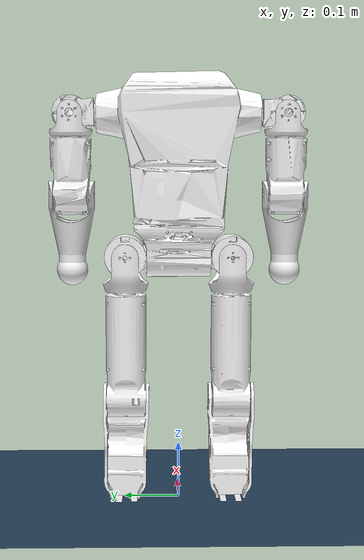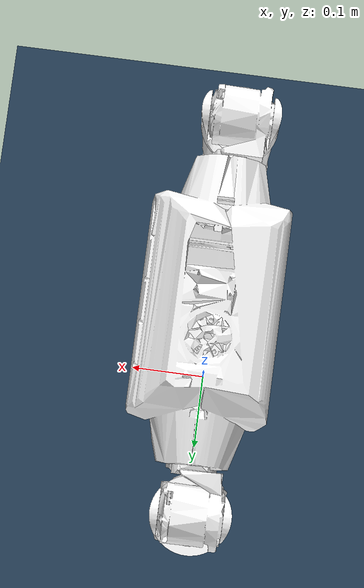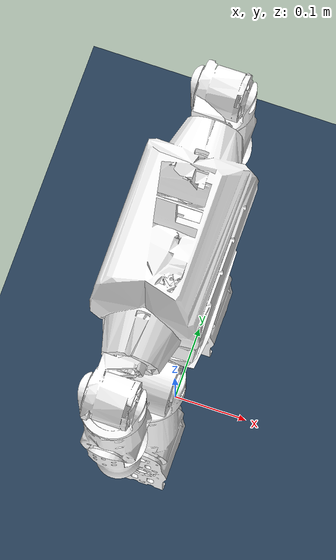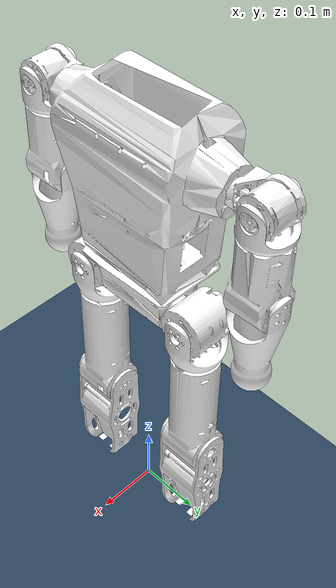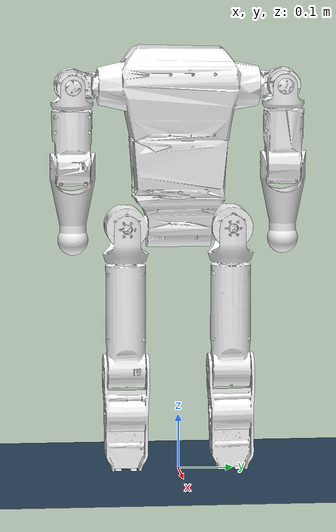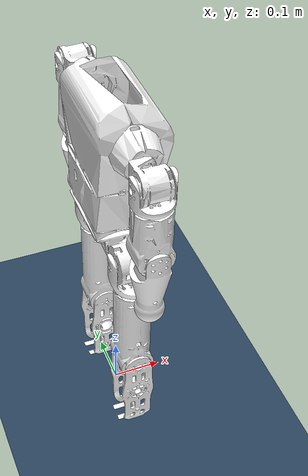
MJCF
<mujoco>
  <option timestep="0.001" />
  <compiler angle="radian" autolimits="true" meshdir="./meshes" />
  <default>
    <joint limited="true" armature="0.05" damping="0.01"/>
    <motor ctrllimited="true" ctrlrange="-100 100"/>
    <equality solref="0.005 1"/>
  </default>
  <asset>
    <mesh name="torso" file="torso.STL" />
    <mesh name="waist-yaw" file="waist-yaw.STL" />
    <mesh name="left-hip-pitch" file="left-hip-pitch.STL" />
    <mesh name="left-hip-roll" file="left-hip-roll.STL" />
    <mesh name="left-hip-yaw" file="left-hip-yaw.STL" />
    <mesh name="left-knee-pitch" file="left-knee-pitch.STL" />
    <mesh name="left-ankle-pitch" file="left-ankle-pitch.STL" />
    <mesh name="right-hip-pitch" file="right-hip-pitch.STL" />
    <mesh name="right-hip-roll" file="right-hip-roll.STL" />
    <mesh name="right-hip-yaw" file="right-hip-yaw.STL" />
    <mesh name="right-knee-pitch" file="right-knee-pitch.STL" />
    <mesh name="right-ankle-pitch" file="right-ankle-pitch.STL" />
    <mesh name="left-shoulder-pitch" file="left-shoulder-pitch.STL" />
    <mesh name="left-shoulder-roll" file="left-shoulder-roll.STL" />
    <mesh name="left-shoulder-yaw" file="left-shoulder-yaw.STL" />
    <mesh name="left-elbow-pitch" file="left-elbow-pitch.STL" />
    <mesh name="right-shoulder-pitch" file="right-shoulder-pitch.STL" />
    <mesh name="right-shoulder-roll" file="right-shoulder-roll.STL" />
    <mesh name="right-shoulder-yaw" file="right-shoulder-yaw.STL" />
    <mesh name="right-elbow-pitch" file="right-elbow-pitch.STL" />
    <texture type="skybox" builtin="gradient" rgb1="0.3 0.5 0.7" rgb2="0 0 0" width="512" height="3072" />
    <texture type="2d" name="groundplane" builtin="checker" mark="edge" rgb1="0.2 0.3 0.4" rgb2="0.1 0.2 0.3" markrgb="0.8 0.8 0.8" width="300" height="300" />
    <material name="groundplane" texture="groundplane" texuniform="true" texrepeat="5 5" reflectance="0.2" />
  </asset>
  <worldbody>
    <body name="torso" pos="0.0 0.0 0.7" quat="1 0 0 0">
      <inertial mass="1.658456422" pos="-0.001093584 -0.000496004 -0.050649155" quat="0.71394805 0.700188213 -0.002320789 0.00304354" diaginertia="0.007163784 0.005797139 0.002635996" />
      <joint name="dummy_to_base_link" type="free" pos="0 0 0" axis="0 0 1" range="0.0 0.0" damping="0" stiffness="0" armature="0.0" frictionloss="0.0" />
      <geom mesh="torso" type="mesh" contype="0" conaffinity="0" pos="0.0 0.0 0.0" quat="1.0 0.0 0.0 0.0" rgba="1.0 1.0 1.0 1.0" />
      <geom mesh="torso" type="mesh" contype="1" conaffinity="1" pos="0.0 0.0 0.0" quat="1.0 0.0 0.0 0.0" rgba="1.0 1.0 1.0 1.0" />
      <body name="waist-yaw" pos="0.0 0.0 -0.19736" quat="1 0 0 0">
        <inertial mass="0.653708783" pos="0.000166406 -2.21e-08 -0.04197222" quat="0.498461935 0.498451965 -0.501540934 0.501535671" diaginertia="0.000973964 0.000861407 0.000309654" />
        <joint name="waist-yaw" type="hinge" pos="0 0 0" axis="0 0 1" range="-1.0 1.0" damping="0" stiffness="0" armature="0.05" frictionloss="0.175" />
        <geom mesh="waist-yaw" type="mesh" contype="0" conaffinity="0" pos="0.0 0.0 0.0" quat="1.0 0.0 0.0 0.0" rgba="1.0 1.0 1.0 1.0" />
        <geom mesh="waist-yaw" type="mesh" contype="1" conaffinity="1" pos="0.0 0.0 0.0" quat="1.0 0.0 0.0 0.0" rgba="1.0 1.0 1.0 1.0" />
        <body name="left-hip-pitch" pos="-5e-05 0.09555 -0.057" quat="1 0 0 0">
          <inertial mass="0.251651963" pos="0.002547146 -0.000496149 -0.000138395" quat="0.52752234 0.461000703 -0.482349478 0.525868342" diaginertia="0.000172252 0.00013201 0.000117291" />
          <joint name="left-hip-pitch" type="hinge" pos="0 0 0" axis="0 1 0" range="-1.05 1.05" damping="0" stiffness="0" armature="0.05" frictionloss="0.075" />
          <geom mesh="left-hip-pitch" type="mesh" contype="0" conaffinity="0" pos="0.0 0.0 0.0" quat="1.0 0.0 0.0 0.0" rgba="1.0 1.0 1.0 1.0" />
          <geom mesh="left-hip-pitch" type="mesh" contype="1" conaffinity="1" pos="0.0 0.0 0.0" quat="1.0 0.0 0.0 0.0" rgba="1.0 1.0 1.0 1.0" />
          <body name="left-hip-roll" pos="0.0 0.0 0.0" quat="1 0 0 0">
            <inertial mass="0.085632593" pos="-0.000807464 -7.14e-07 -0.040126453" quat="0.474234337 0.524511911 0.524536499 0.474184046" diaginertia="0.000129936 0.000110604 7.76e-05" />
            <joint name="left-hip-roll" type="hinge" pos="0 0 0" axis="1 0 0" range="-0.52 0.785" damping="0" stiffness="0" armature="0.05" frictionloss="0.075" />
            <geom mesh="left-hip-roll" type="mesh" contype="0" conaffinity="0" pos="0.0 0.0 0.0" quat="1.0 0.0 0.0 0.0" rgba="1.0 1.0 1.0 1.0" />
            <geom mesh="left-hip-roll" type="mesh" contype="1" conaffinity="1" pos="0.0 0.0 0.0" quat="1.0 0.0 0.0 0.0" rgba="1.0 1.0 1.0 1.0" />
            <body name="left-hip-yaw" pos="0.0 0.0 0.0" quat="1 0 0 0">
              <inertial mass="0.27473616" pos="0.011697405 -0.000606824 -0.147530534" quat="0.99990727 -0.010747653 -0.002518195 -0.007974892" diaginertia="0.000827257 0.000752788 0.000150798" />
              <joint name="left-hip-yaw" type="hinge" pos="0 0 0" axis="0 0 1" range="-0.52 0.785" damping="0" stiffness="0" armature="0.05" frictionloss="0.075" />
              <geom mesh="left-hip-yaw" type="mesh" contype="0" conaffinity="0" pos="0.0 0.0 0.0" quat="1.0 0.0 0.0 0.0" rgba="1.0 1.0 1.0 1.0" />
              <geom mesh="left-hip-yaw" type="mesh" contype="1" conaffinity="1" pos="0.0 0.0 0.0" quat="1.0 0.0 0.0 0.0" rgba="1.0 1.0 1.0 1.0" />
              <body name="left-knee-pitch" pos="0.0 0.0 -0.26105" quat="1 0 0 0">
                <inertial mass="0.160219818" pos="0.004512452 0.000334536 -0.092254102" quat="0.707074034 0.009618238 0.008531739 0.707022637" diaginertia="0.000585408 0.000559765 6.56e-05" />
                <joint name="left-knee-pitch" type="hinge" pos="0 0 0" axis="0 1 0" range="-0.3 2.3562" damping="0" stiffness="0" armature="0.05" frictionloss="0.075" />
                <geom mesh="left-knee-pitch" type="mesh" contype="0" conaffinity="0" pos="0.0 0.0 0.0" quat="1.0 0.0 0.0 0.0" rgba="1.0 1.0 1.0 1.0" />
                <geom mesh="left-knee-pitch" type="mesh" contype="1" conaffinity="1" pos="0.0 0.0 0.0" quat="1.0 0.0 0.0 0.0" rgba="1.0 1.0 1.0 1.0" />
                <body name="left-ankle-pitch" pos="0.0 -5e-05 -0.2" quat="1 0 0 0">
                  <inertial mass="0.135651342" pos="0.014941603 -7.01e-08 -0.013934787" quat="-1.91e-06 0.73406349 1.76e-06 0.679080844" diaginertia="0.000314826 0.000294175 4.61e-05" />
                  <joint name="left-ankle-pitch" type="hinge" pos="0 0 0" axis="0 1 0" range="-1.047 0.3" damping="0" stiffness="0" armature="0.05" frictionloss="0.075" />
                  <geom mesh="left-ankle-pitch" type="mesh" contype="0" conaffinity="0" pos="0.0 0.0 0.0" quat="1.0 0.0 0.0 0.0" rgba="1.0 1.0 1.0 1.0" />
                  <geom mesh="left-ankle-pitch" type="mesh" contype="1" conaffinity="1" pos="0.0 0.0 0.0" quat="1.0 0.0 0.0 0.0" rgba="1.0 1.0 1.0 1.0" />
                </body>
              </body>
            </body>
          </body>
        </body>
        <body name="right-hip-pitch" pos="0.0 -0.09555 -0.057" quat="1 0 0 0">
          <inertial mass="0.14214743" pos="-0.001841459 0.000815562 -0.000261057" quat="0.457535967 0.531586739 -0.522443675 0.484901005" diaginertia="0.000132521 8.68e-05 7.78e-05" />
          <joint name="right-hip-pitch" type="hinge" pos="0 0 0" axis="0 1 0" range="-1.05 1.05" damping="0" stiffness="0" armature="0.05" frictionloss="0.075" />
          <geom mesh="right-hip-pitch" type="mesh" contype="0" conaffinity="0" pos="0.0 0.0 0.0" quat="1.0 0.0 0.0 0.0" rgba="1.0 1.0 1.0 1.0" />
          <geom mesh="right-hip-pitch" type="mesh" contype="1" conaffinity="1" pos="0.0 0.0 0.0" quat="1.0 0.0 0.0 0.0" rgba="1.0 1.0 1.0 1.0" />
          <body name="right-hip-roll" pos="0.0 0.0 0.0" quat="1 0 0 0">
            <inertial mass="0.085632593" pos="-0.000857464 -7.14e-07 -0.040126453" quat="0.474234337 0.524511911 0.524536499 0.474184046" diaginertia="0.000129936 0.000110604 7.76e-05" />
            <joint name="right-hip-roll" type="hinge" pos="0 0 0" axis="1 0 0" range="-0.785 0.52" damping="0" stiffness="0" armature="0.05" frictionloss="0.075" />
            <geom mesh="right-hip-roll" type="mesh" contype="0" conaffinity="0" pos="0.0 0.0 0.0" quat="1.0 0.0 0.0 0.0" rgba="1.0 1.0 1.0 1.0" />
            <geom mesh="right-hip-roll" type="mesh" contype="1" conaffinity="1" pos="0.0 0.0 0.0" quat="1.0 0.0 0.0 0.0" rgba="1.0 1.0 1.0 1.0" />
            <body name="right-hip-yaw" pos="0.0 0.0 0.0" quat="1 0 0 0">
              <inertial mass="0.27544792" pos="-0.011717179 0.000677608 -0.147823869" quat="0.999907222 0.010746332 0.00251827 -0.00798266" diaginertia="0.000827332 0.000752936 0.000150873" />
              <joint name="right-hip-yaw" type="hinge" pos="0 0 0" axis="0 0 1" range="-0.785 0.52" damping="0" stiffness="0" armature="0.05" frictionloss="0.075" />
              <geom mesh="right-hip-yaw" type="mesh" contype="0" conaffinity="0" pos="0.0 0.0 0.0" quat="1.0 0.0 0.0 0.0" rgba="1.0 1.0 1.0 1.0" />
              <geom mesh="right-hip-yaw" type="mesh" contype="1" conaffinity="1" pos="0.0 0.0 0.0" quat="1.0 0.0 0.0 0.0" rgba="1.0 1.0 1.0 1.0" />
              <body name="right-knee-pitch" pos="-5e-05 0.0 -0.26105" quat="1 0 0 0">
                <inertial mass="0.160572875" pos="0.004486367 -0.000253579 -0.09227104" quat="0.706229538 0.008337644 0.009263435 0.707873231" diaginertia="0.000586333 0.00056055 6.57e-05" />
                <joint name="right-knee-pitch" type="hinge" pos="0 0 0" axis="0 1 0" range="-0.3 2.3562" damping="0" stiffness="0" armature="0.05" frictionloss="0.075" />
                <geom mesh="right-knee-pitch" type="mesh" contype="0" conaffinity="0" pos="0.0 0.0 0.0" quat="1.0 0.0 0.0 0.0" rgba="1.0 1.0 1.0 1.0" />
                <geom mesh="right-knee-pitch" type="mesh" contype="1" conaffinity="1" pos="0.0 0.0 0.0" quat="1.0 0.0 0.0 0.0" rgba="1.0 1.0 1.0 1.0" />
                <body name="right-ankle-pitch" pos="0.0 5e-05 -0.2" quat="1 0 0 0">
                  <inertial mass="0.135651345" pos="0.014996706 -7e-08 -0.013875468" quat="-1.9e-06 0.732716534 1.77e-06 0.680533967" diaginertia="0.000314826 0.000294175 4.61e-05" />
                  <joint name="right-ankle-pitch" type="hinge" pos="0 0 0" axis="0 1 0" range="-1.047 0.3" damping="0" stiffness="0" armature="0.05" frictionloss="0.075" />
                  <geom mesh="right-ankle-pitch" type="mesh" contype="0" conaffinity="0" pos="0.0 0.0 0.0" quat="1.0 0.0 0.0 0.0" rgba="1.0 1.0 1.0 1.0" />
                  <geom mesh="right-ankle-pitch" type="mesh" contype="1" conaffinity="1" pos="0.0 0.0 0.0" quat="1.0 0.0 0.0 0.0" rgba="1.0 1.0 1.0 1.0" />
                </body>
              </body>
            </body>
          </body>
        </body>
      </body>
      <body name="left-shoulder-pitch" pos="0.0 0.19112 0.0" quat="1 0 0 0">
        <inertial mass="0.136871359" pos="-0.005794184 -0.004856582 -4.87e-05" quat="0.697882159 0.705521632 0.087736593 0.086614139" diaginertia="6.6e-05 5.1e-05 4.16e-05" />
        <joint name="left-shoulder-pitch" type="hinge" pos="0 0 0" axis="0 1 0" range="-1.0 1.0" damping="0" stiffness="0" armature="0.05" frictionloss="0.075" />
        <geom mesh="left-shoulder-pitch" type="mesh" contype="0" conaffinity="0" pos="0.0 0.0 0.0" quat="1.0 0.0 0.0 0.0" rgba="1.0 1.0 1.0 1.0" />
        <geom mesh="left-shoulder-pitch" type="mesh" contype="1" conaffinity="1" pos="0.0 0.0 0.0" quat="1.0 0.0 0.0 0.0" rgba="1.0 1.0 1.0 1.0" />
        <body name="left-shoulder-roll" pos="0.0 0.0 0.0" quat="1 0 0 0">
          <inertial mass="0.058494824" pos="-0.006484444 2.21e-07 -0.027939845" quat="5e-05 0.755766991 7.3e-06 0.654840632" diaginertia="5.34e-05 4.84e-05 3.19e-05" />
          <joint name="left-shoulder-roll" type="hinge" pos="0 0 0" axis="1 0 0" range="-1.0 1.0" damping="0" stiffness="0" armature="0.05" frictionloss="0.075" />
          <geom mesh="left-shoulder-roll" type="mesh" contype="0" conaffinity="0" pos="0.0 0.0 0.0" quat="1.0 0.0 0.0 0.0" rgba="1.0 1.0 1.0 1.0" />
          <geom mesh="left-shoulder-roll" type="mesh" contype="1" conaffinity="1" pos="0.0 0.0 0.0" quat="1.0 0.0 0.0 0.0" rgba="1.0 1.0 1.0 1.0" />
          <body name="left-shoulder-yaw" pos="0.0 0.0 0.0" quat="1 0 0 0">
            <inertial mass="0.30186537" pos="-0.004399009 -0.001085682 -0.098485259" quat="0.999379923 -0.035135843 -0.000420304 0.002250851" diaginertia="0.000433292 0.000366772 0.000142743" />
            <joint name="left-shoulder-yaw" type="hinge" pos="0 0 0" axis="0 0 1" range="-1.0 1.0" damping="0" stiffness="0" armature="0.05" frictionloss="0.055" />
            <geom mesh="left-shoulder-yaw" type="mesh" contype="0" conaffinity="0" pos="0.0 0.0 0.0" quat="1.0 0.0 0.0 0.0" rgba="1.0 1.0 1.0 1.0" />
            <geom mesh="left-shoulder-yaw" type="mesh" contype="1" conaffinity="1" pos="0.0 0.0 0.0" quat="1.0 0.0 0.0 0.0" rgba="1.0 1.0 1.0 1.0" />
            <body name="left-elbow-pitch" pos="-0.0045 0.0 -0.14205" quat="1 0 0 0">
              <inertial mass="0.14911424" pos="4.56e-08 -0.000377398 -0.077432526" quat="0.999995179 -0.003104878 -1.86e-06 -4.73e-05" diaginertia="0.000219474 0.000181017 0.00011805" />
              <joint name="left-elbow-pitch" type="hinge" pos="0 0 0" axis="0 1 0" range="-1.0 1.0" damping="0" stiffness="0" armature="0.05" frictionloss="0.055" />
              <geom mesh="left-elbow-pitch" type="mesh" contype="0" conaffinity="0" pos="0.0 0.0 0.0" quat="1.0 0.0 0.0 0.0" rgba="1.0 1.0 1.0 1.0" />
              <geom mesh="left-elbow-pitch" type="mesh" contype="1" conaffinity="1" pos="0.0 0.0 0.0" quat="1.0 0.0 0.0 0.0" rgba="1.0 1.0 1.0 1.0" />
            </body>
          </body>
        </body>
      </body>
      <body name="right-shoulder-pitch" pos="-0.0045 -0.19112 0.0" quat="1 0 0 0">
        <inertial mass="0.136871359" pos="-0.001294184 0.004856582 4.87e-05" quat="0.697882159 0.705521632 -0.087736593 -0.086614139" diaginertia="6.6e-05 5.1e-05 4.16e-05" />
        <joint name="right-shoulder-pitch" type="hinge" pos="0 0 0" axis="0 1 0" range="-1.0 1.0" damping="0" stiffness="0" armature="0.05" frictionloss="0.075" />
        <geom mesh="right-shoulder-pitch" type="mesh" contype="0" conaffinity="0" pos="0.0 0.0 0.0" quat="1.0 0.0 0.0 0.0" rgba="1.0 1.0 1.0 1.0" />
        <geom mesh="right-shoulder-pitch" type="mesh" contype="1" conaffinity="1" pos="0.0 0.0 0.0" quat="1.0 0.0 0.0 0.0" rgba="1.0 1.0 1.0 1.0" />
        <body name="right-shoulder-roll" pos="0.0 0.0 0.0" quat="1 0 0 0">
          <inertial mass="0.058494824" pos="-0.001984444 2.21e-07 -0.027939845" quat="5e-05 0.755766991 7.3e-06 0.654840632" diaginertia="5.34e-05 4.84e-05 3.19e-05" />
          <joint name="right-shoulder-roll" type="hinge" pos="0 0 0" axis="1 0 0" range="-1.0 1.0" damping="0" stiffness="0" armature="0.05" frictionloss="0.075" />
          <geom mesh="right-shoulder-roll" type="mesh" contype="0" conaffinity="0" pos="0.0 0.0 0.0" quat="1.0 0.0 0.0 0.0" rgba="1.0 1.0 1.0 1.0" />
          <geom mesh="right-shoulder-roll" type="mesh" contype="1" conaffinity="1" pos="0.0 0.0 0.0" quat="1.0 0.0 0.0 0.0" rgba="1.0 1.0 1.0 1.0" />
          <body name="right-shoulder-yaw" pos="0.0 0.0 0.0" quat="1 0 0 0">
            <inertial mass="0.296097009" pos="-0.000102957 0.001545818 -0.097636558" quat="0.999369973 0.035421297 0.000402892 0.00219703" diaginertia="0.000431443 0.000363158 0.000140923" />
            <joint name="right-shoulder-yaw" type="hinge" pos="0 0 0" axis="0 0 1" range="-1.0 1.0" damping="0" stiffness="0" armature="0.05" frictionloss="0.055" />
            <geom mesh="right-shoulder-yaw" type="mesh" contype="0" conaffinity="0" pos="0.0 0.0 0.0" quat="1.0 0.0 0.0 0.0" rgba="1.0 1.0 1.0 1.0" />
            <geom mesh="right-shoulder-yaw" type="mesh" contype="1" conaffinity="1" pos="0.0 0.0 0.0" quat="1.0 0.0 0.0 0.0" rgba="1.0 1.0 1.0 1.0" />
            <body name="right-elbow-pitch" pos="0.0 0.0 -0.14205" quat="1 0 0 0">
              <inertial mass="0.14911424" pos="-4.56e-08 0.000427398 -0.077432526" quat="0.999995179 0.003104878 1.86e-06 -4.73e-05" diaginertia="0.000219474 0.000181017 0.00011805" />
              <joint name="right-elbow-pitch" type="hinge" pos="0 0 0" axis="0 1 0" range="-1.0 1.0" damping="0" stiffness="0" armature="0.05" frictionloss="0.055" />
              <geom mesh="right-elbow-pitch" type="mesh" contype="0" conaffinity="0" pos="0.0 0.0 0.0" quat="1.0 0.0 0.0 0.0" rgba="1.0 1.0 1.0 1.0" />
              <geom mesh="right-elbow-pitch" type="mesh" contype="1" conaffinity="1" pos="0.0 0.0 0.0" quat="1.0 0.0 0.0 0.0" rgba="1.0 1.0 1.0 1.0" />
            </body>
          </body>
        </body>
      </body>
    </body>
    <light pos="0 0 3.5" dir="0 0 -1" directional="true" />
    <geom name="floor" size="0 0 0.05" type="plane" material="groundplane" condim="3" conaffinity="15" />
  </worldbody>
  <actuator>
    <motor name="waist-yaw_motor" joint="waist-yaw" ctrlrange="-12 12" />
    <motor name="left-hip-pitch_motor" joint="left-hip-pitch" ctrlrange="-28 28" />
    <motor name="left-hip-roll_motor" joint="left-hip-roll" ctrlrange="-28 28" />
    <motor name="left-hip-yaw_motor" joint="left-hip-yaw" ctrlrange="-28 28" />
    <motor name="left-knee-pitch_motor" joint="left-knee-pitch" ctrlrange="-28 28" />
    <motor name="left-ankle-pitch_motor" joint="left-ankle-pitch" ctrlrange="-28 28" />
    <motor name="right-hip-pitch_motor" joint="right-hip-pitch" ctrlrange="-28 28" />
    <motor name="right-hip-roll_motor" joint="right-hip-roll" ctrlrange="-28 28" />
    <motor name="right-hip-yaw_motor" joint="right-hip-yaw" ctrlrange="-28 28" />
    <motor name="right-knee-pitch_motor" joint="right-knee-pitch" ctrlrange="-28 28" />
    <motor name="right-ankle-pitch_motor" joint="right-ankle-pitch" ctrlrange="-28 28" />
    <motor name="left-shoulder-pitch_motor" joint="left-shoulder-pitch" ctrlrange="-28 28" />
    <motor name="left-shoulder-roll_motor" joint="left-shoulder-roll" ctrlrange="-28 28" />
    <motor name="left-shoulder-yaw_motor" joint="left-shoulder-yaw" ctrlrange="-7 7" />
    <motor name="left-elbow-pitch_motor" joint="left-elbow-pitch" ctrlrange="-7 7" />
    <motor name="right-shoulder-pitch_motor" joint="right-shoulder-pitch" ctrlrange="-28 28" />
    <motor name="right-shoulder-roll_motor" joint="right-shoulder-roll" ctrlrange="-28 28" />
    <motor name="right-shoulder-yaw_motor" joint="right-shoulder-yaw" ctrlrange="-7 7" />
    <motor name="right-elbow-pitch_motor" joint="right-elbow-pitch" ctrlrange="-7 7" />
  </actuator>
  <visual>
    <headlight diffuse="0.6 0.6 0.6" ambient="0.3 0.3 0.3" specular="0 0 0" />
    <rgba haze="0.15 0.25 0.35 1" />
    <global azimuth="160" elevation="-20" />
  </visual>
</mujoco>
